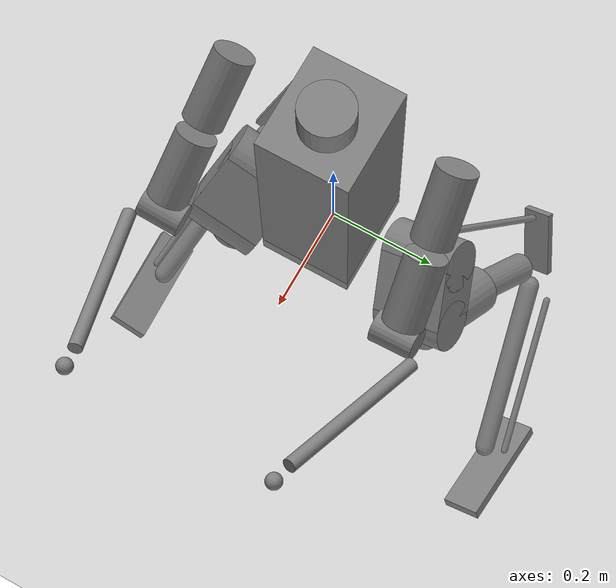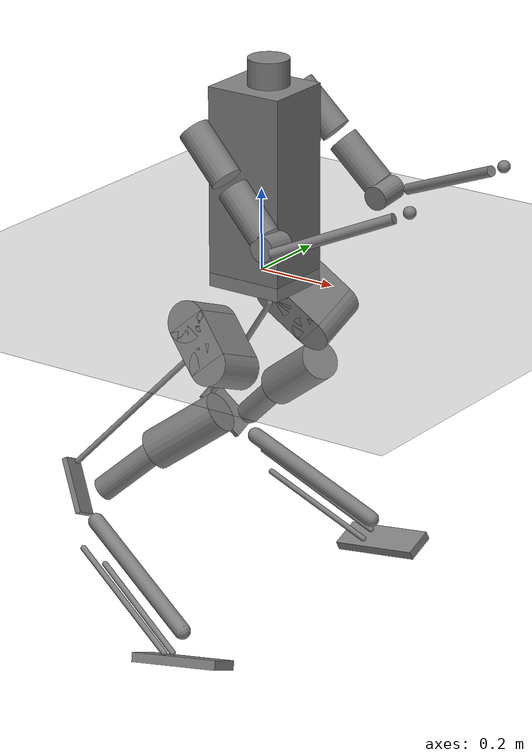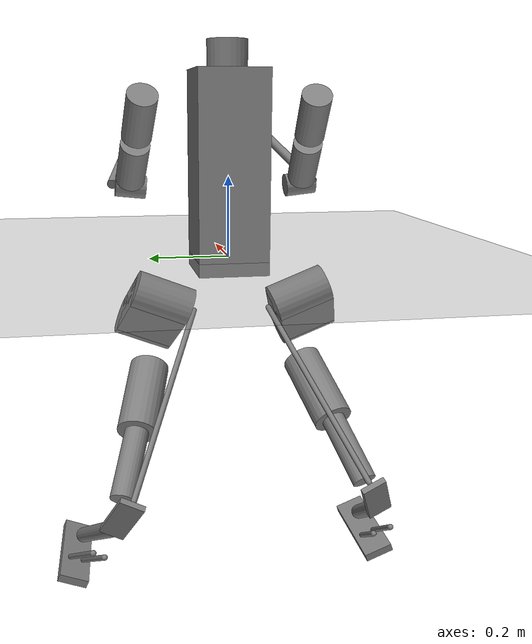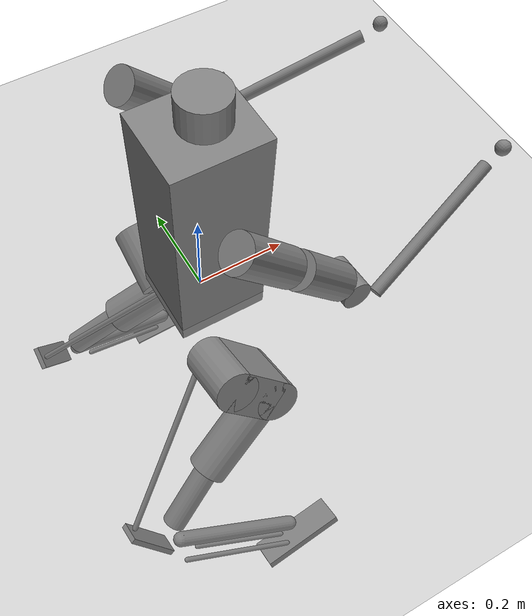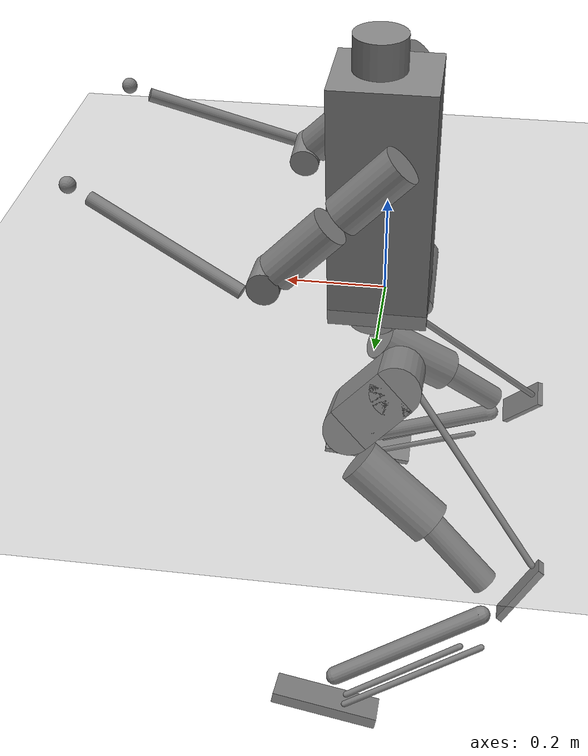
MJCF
<mujoco model='digit-v3'>
  <compiler angle='degree' eulerseq='xyz' meshdir='original_stl'/>
  <option iterations='50' solver='Newton' timestep='0.0005' gravity='0 0 -9.806'/>
  <size nconmax='100' />
  <asset>
    <material name='collision' rgba='0.1 0.5 0.9 0.4'/>
    <material name='plane' reflectance='0.000000' texrepeat='1 1' texture='plane' texuniform='true'/>
    <material name='robot' rgba='0.9 0.5 0.1 1'/>
    <texture builtin='checker' height='512' name='plane' rgb1='0.2 0.2 0.2' rgb2='0.3 0.3 0.3' type='2d' width='512'/>
    <texture builtin='gradient' height='128' rgb1='0.4 0.6 0.8' rgb2='0 0 0' type='skybox' width='128'/>
  </asset>
  <default>
    <default class='collision'>
      <geom conaffinity='1' condim='3' contype='1'/>
    </default>
    <equality solimp='0.9 0.95 0.001 0.1 2' solref='0.001 1.1' />
    <geom conaffinity='0' condim='1' contype='0' solref='0.005 1' />
    <joint solreflimit='0.001 1' />
  </default>
  <worldbody>
    <geom name='ground' type='plane' size='0 0 1' conaffinity='15' condim='3' friction='0.7 0.01 0.005' pos='0 0 0' priority='100' />
    <body name='base' pos='0 0 0' euler='-0 0 -0'>
      <inertial pos='0.001637 0.0002 0.259307' mass='15.028392' fullinertia='0.375905 0.344193 0.098732 -8.8e-05 0.0085 6.6e-05' />
      <joint type='free' limited='false'/>
      <geom type='box' size='0.0975 0.087 0.245' pos='0.008 0 0.21' euler='-0 0 -0' friction='0.7 0.01 0.005'  mass='15.028392' class='collision'/>
      <geom type='cylinder' size='0.05 0.0325' pos='0.02 0 0.49' euler='-0 0 -0' friction='0.7 0.01 0.005'  mass='15.028392' class='collision'/>

      <body name='left-hip-roll' pos='-0.001 0.091 0' euler='21.5 -90 0'>
        <inertial pos='-0.001967 0.000244 0.031435' mass='0.915088' fullinertia='0.001017 0.001148 0.000766 -3e-06 1.3e-05 -4e-06' />
        <joint name='left-hip-roll' type='hinge' axis='0 0 1' range='-60 60' stiffness='0' frictionloss='1' damping='1' armature='0.173824' limited='true' pos='0 0 0'/>

        <body name='left-hip-yaw' pos='-0.0505 0 0.044' euler='0 -90 0'>
          <inertial pos='1e-05 -0.001945 0.042033' mass='0.818753' fullinertia='0.001627 0.001929 0.00077 -1e-06 2e-06 5.3e-05' />
          <joint name='left-hip-yaw' type='hinge' axis='0 0 1' range='-40 40' stiffness='0' frictionloss='1' damping='1' armature='0.0679' limited='true' pos='0 0 0'/>

          <body name='left-hip-pitch' pos='0 0.004 0.068' euler='90 0 135'>
            <inertial pos='0.060537 0.000521 -0.038857' mass='6.244279' fullinertia='0.011533 0.033345 0.033958 -0.000171 0.000148 0.000178' />
            <joint name='left-hip-pitch' type='hinge' axis='0 0 -1' range='-60 90' stiffness='0' frictionloss='0.5' damping='1' armature='0.120473' limited='true' pos='0 0 0'/>

            <geom type='cylinder' size='0.05 0.072' pos='0 0 -0.04' euler='-0 0 -0' friction='0.7 0.01 0.005' contype='4' conaffinity='3' mass='6.244279' class='collision'/>
            <geom type='cylinder' size='0.05 0.072' pos='0.12 0 -0.04' euler='-0 0 -0' friction='0.7 0.01 0.005' contype='4' conaffinity='3' mass='6.244279' class='collision'/>
            <geom type='box' size='0.06 0.05 0.072' pos='0.06 0 -0.04' euler='-0 0 -0' friction='0.7 0.01 0.005' contype='4' conaffinity='3' mass='6.244279' class='collision'/>

            <body name='left-achilles-rod' pos='0 0 0.046' euler='4.09 0.05 -82.27'>
              <inertial pos='0.2506 0 0' mass='0.178148' fullinertia='3e-06 0.004501 0.004501 0 0 0' />
              <joint name='left-achilles-rod' type='ball' axis='0 0 1'  stiffness='0' frictionloss='0' damping='0.01' armature='0' limited='false' pos='0 0 0'/>

              <geom type='capsule' size='0.007 0.25' pos='0.25 0 0' euler='4 90 0' friction='0.7 0.01 0.005' contype='4' conaffinity='3' mass='0.178148' class='collision'/>
            </body>

            <body name='left-knee' pos='0.12 0 0.0045' euler='0 0 -90'>
              <inertial pos='0.045641 0.042154 0.001657' mass='1.227077' fullinertia='0.002643 0.005098 0.007019 -0.001832 6.6e-05 4.5e-05' />
              <joint name='left-knee' type='hinge' axis='0 0 1' range='-80 58.4' stiffness='0' frictionloss='0.5' damping='1' armature='0.120473' limited='true' pos='0 0 0'/>

              <body name='left-shin' pos='0.060677 0.047406 0' euler='-0 0 -0'>
                <inertial pos='0.174265 0.010265 0.00107' mass='0.895793' fullinertia='0.001128 0.022492 0.022793 0.001098 0.000196 -3e-06' />
                <joint name='left-shin' type='hinge' axis='0 0 1'  stiffness='6000' frictionloss='0' damping='0' armature='0' limited='false' pos='0 0 0'/>

                <geom type='cylinder' size='0.03 0.1715' pos='0.23 0 0' euler='0 90 0' friction='0.7 0.01 0.005' contype='4' conaffinity='3' mass='0.895793' class='collision'/>
                <geom type='cylinder' size='0.05 0.1' pos='0.125 0.009 0' euler='90 84 -3.042764221e-14' friction='0.7 0.01 0.005' contype='4' conaffinity='3' mass='0.895793' class='collision'/>

                <body name='left-tarsus' pos='0.434759 0.02 0' euler='-0 0 103'>
                  <inertial pos='0.100777 -0.029183 0.000678' mass='1.322865' fullinertia='0.000932 0.016409 0.016501 0.00061 0.000102 9e-06' />
                  <joint name='left-tarsus' type='hinge' axis='0 0 1' range='-50.3 71.6' stiffness='0' frictionloss='0' damping='0' armature='0' limited='true' pos='0 0 0'/>

                  <geom type='capsule' size='0.02 0.18' pos='0.21 -0.03 0' euler='0 90 0' friction='0.7 0.01 0.005' contype='4' conaffinity='3' mass='1.322865' class='collision'/>
                  <geom type='box' size='0.007 0.07 0.03' pos='-0.07 -0.012 0' euler='5 3.975693352e-16 65' friction='0.7 0.01 0.005' contype='4' conaffinity='3' mass='1.322865' class='collision'/>

                  <body name='left-heel-spring' pos='-0.01766 -0.029456 0.00104' euler='4.47 0.32 155.8'>
                    <inertial pos='0.049086 0.004739 -4.5e-05' mass='0.230018' fullinertia='5.5e-05 0.00074 0.000701 1.5e-05 1e-06 0' />
                    <joint name='left-heel-spring' type='hinge' axis='0 0 1' range='-6 6' stiffness='4375' frictionloss='0' damping='0' armature='0' limited='true' pos='0 0 0'/>

                  </body>

                  <body name='left-toe-A' pos='0.059 -0.034 -0.0276' euler='-180 0 88.96'>
                    <inertial pos='0.005161 1e-06 -0.002248' mass='0.139557' fullinertia='2.9e-05 5.8e-05 7.4e-05 0 -4e-06 0' />
                    <joint name='left-toe-A' type='hinge' axis='0 0 1' range='-46.2755 44.9815' stiffness='0' frictionloss='1' damping='1' armature='0.036089' limited='true' pos='0 0 0'/>

                    <body name='left-toe-A-rod' pos='0.057 0 -0.008' euler='0.34 2.14 -88.45'>
                      <inertial pos='0.171071 0 0' mass='0.090983' fullinertia='1e-06 0.001182 0.001182 0 0 0' />
                      <joint name='left-toe-A-rod' type='ball' axis='0 0 1'  stiffness='0' frictionloss='0' damping='0.01' armature='0' limited='false' pos='0 0 0'/>

                      <geom type='capsule' size='0.007 0.17' pos='0.17 0 0' euler='4 90 0' friction='0.7 0.01 0.005' contype='4' conaffinity='3' mass='0.090983' class='collision'/>
                    </body>

                  </body>

                  <body name='left-toe-B' pos='0.111 -0.034 0.0276' euler='0 0 -88.96'>
                    <inertial pos='0.005161 1e-06 -0.002248' mass='0.139557' fullinertia='2.9e-05 5.8e-05 7.4e-05 0 -4e-06 0' />
                    <joint name='left-toe-B' type='hinge' axis='0 0 1' range='-45.8918 45.5476' stiffness='0' frictionloss='1' damping='1' armature='0.036089' limited='true' pos='0 0 0'/>

                    <body name='left-toe-B-rod' pos='0.057 0 -0.008' euler='-0.22 -3.08 88.34'>
                      <inertial pos='0.142991 0 0' mass='0.079507' fullinertia='1e-06 0.000768 0.000768 0 0 0' />
                      <joint name='left-toe-B-rod' type='ball' axis='0 0 1'  stiffness='0' frictionloss='0' damping='0.01' armature='0' limited='false' pos='0 0 0'/>

                      <geom type='capsule' size='0.007 0.144' pos='0.144 0 0' euler='4 90 0' friction='0.7 0.01 0.005' contype='4' conaffinity='3' mass='0.079507' class='collision'/>
                    </body>

                  </body>

                  <body name='left-toe-pitch' pos='0.408 -0.04 0' euler='-0 0 71.75'>
                    <inertial pos='-0.000141 2e-06 3e-06' mass='0.043881' fullinertia='5e-06 8e-06 4e-06 0 0 0' />
                    <joint name='left-toe-pitch' type='hinge' axis='0 0 1' range='-44 34' stiffness='0' frictionloss='0' damping='0' armature='0' limited='true' pos='0 0 0'/>

                    <body name='left-toe-roll' pos='0 0 0' euler='0 90 0'>
                      <inertial pos='9e-06 -0.028084 -0.023204' mass='0.531283' fullinertia='0.00187 0.001616 0.000843 0 0 0.000566' />
                      <joint name='left-toe-roll' type='hinge' axis='0 0 1' range='-37 33' stiffness='0' frictionloss='0' damping='0' armature='0' limited='true' pos='0 0 0'/>

                      <geom type='box' size='0.04 0.1175 0.0115' pos='0 -0.0437 -0.0255' euler='-60 0 0' friction='0.7 0.01 0.005' contype='4' conaffinity='3' mass='0.531283' class='collision'/>

                      <body name='left-foot' pos='0 -0.05456 -0.0315' euler='-60 0 -90'>
                      </body>

                    </body>
                  </body>
                </body>
              </body>
            </body>
          </body>
        </body>
      </body>

      <body name='left-shoulder-roll' pos='-0.001 0.12 0.4' euler='-10 -90 0'>
        <inertial pos='-0.000819 -0.003158 0.023405' mass='0.535396' fullinertia='0.000704 0.00075 0.000298 1.4e-05 1.2e-05 3.5e-05' />
        <joint name='left-shoulder-roll' type='hinge' axis='0 0 1' range='-75 75' stiffness='0' frictionloss='2' damping='2' armature='0.173824' limited='true' pos='0 0 0'/>

        <body name='left-shoulder-pitch' pos='-0.00317 -0.011055 0.0555' euler='90 -16 -45'>
          <inertial pos='-4.2e-05 -0.061882 -0.073788' mass='1.440357' fullinertia='0.006761 0.002087 0.005778 -6e-06 -3e-06 -0.002046' />
          <joint name='left-shoulder-pitch' type='hinge' axis='0 0 -1' range='-145 145' stiffness='0' frictionloss='2' damping='2' armature='0.173824' limited='true' pos='0 0 0'/>

          <geom type='cylinder' size='0.038 0.07' pos='0 -0.093 -0.1' euler='90 0 -0' friction='0.7 0.01 0.005'  mass='1.440357' class='collision'/>

          <body name='left-shoulder-yaw' pos='0 -0.165 -0.1' euler='90 0 -0'>
            <inertial pos='-3e-05 0.001937 0.11407' mass='1.065387' fullinertia='0.006967 0.007003 0.000673 -1e-06 -1e-06 -1.5e-05' />
            <joint name='left-shoulder-yaw' type='hinge' axis='0 0 1' range='-100 100' stiffness='0' frictionloss='2' damping='1' armature='0.0679' limited='true' pos='0 0 0'/>

            <geom type='cylinder' size='0.038 0.0675' pos='0 0 0.092558' euler='-0 0 -0' friction='0.7 0.01 0.005'  mass='1.065387' class='collision'/>
            <geom type='cylinder' size='0.03 0.04' pos='0 0.0035 0.185' euler='90 1.590277341e-15 22.5' friction='0.7 0.01 0.005'  mass='1.065387' class='collision'/>

            <body name='left-elbow' pos='0 -0.0385 0.185' euler='90 1.590277341e-15 22.5'>
              <inertial pos='0.107996 0.000521 -0.017765' mass='0.550582' fullinertia='0.000476 0.009564 0.009437 -2.9e-05 0.001403 9e-06' />
              <joint name='left-elbow' type='hinge' axis='0 0 1' range='-77.5 77.5' stiffness='0' frictionloss='2' damping='1' armature='0.173824' limited='true' pos='0 0 0'/>

              <geom type='cylinder' size='0.013 0.1565' pos='0.184 0.01 -0.026' euler='170 78 -180' friction='0.7 0.01 0.005'  mass='0.550582' class='collision'/>
              <geom type='sphere' size='0.015' pos='0.37937 0 -0.061912' euler='-0 0 -0' friction='0.7 0.01 0.005'  mass='0.550582' class='collision'/>

              <body name='left-hand' pos='0.369 0 -0.07912' euler='90 0 -10'>
              </body>

            </body>
          </body>
        </body>
      </body>

      <body name='right-hip-roll' pos='-0.001 -0.091 0' euler='-21.5 -90 0'>
        <inertial pos='-0.001967 -0.000244 0.031435' mass='0.915088' fullinertia='0.001017 0.001148 0.000766 3e-06 1.3e-05 4e-06' />
        <joint name='right-hip-roll' type='hinge' axis='0 0 1' range='-60 60' stiffness='0' frictionloss='1' damping='1' armature='0.173824' limited='true' pos='0 0 0'/>

        <body name='right-hip-yaw' pos='-0.0505 0 0.044' euler='0 -90 0'>
          <inertial pos='1e-05 0.001945 0.042033' mass='0.818753' fullinertia='0.001627 0.001929 0.00077 1e-06 2e-06 -5.3e-05' />
          <joint name='right-hip-yaw' type='hinge' axis='0 0 1' range='-40 40' stiffness='0' frictionloss='1' damping='1' armature='0.0679' limited='true' pos='0 0 0'/>

          <body name='right-hip-pitch' pos='0 -0.004 0.068' euler='-90 0 -135'>
            <inertial pos='0.060537 -0.000521 -0.038857' mass='6.244279' fullinertia='0.011533 0.033345 0.033958 0.000171 0.000148 -0.000178' />
            <joint name='right-hip-pitch' type='hinge' axis='0 0 -1' range='-90 60' stiffness='0' frictionloss='0.5' damping='1' armature='0.120473' limited='true' pos='0 0 0'/>

            <geom type='cylinder' size='0.05 0.072' pos='0 0 -0.04' euler='-0 0 -0' friction='0.7 0.01 0.005' contype='2' conaffinity='1' mass='6.244279' class='collision'/>
            <geom type='cylinder' size='0.05 0.072' pos='0.12 0 -0.04' euler='-0 0 -0' friction='0.7 0.01 0.005' contype='2' conaffinity='1' mass='6.244279' class='collision'/>
            <geom type='box' size='0.06 0.05 0.072' pos='0.06 0 -0.04' euler='-0 0 -0' friction='0.7 0.01 0.005' contype='2' conaffinity='1' mass='6.244279' class='collision'/>

            <body name='right-achilles-rod' pos='0 0 0.046' euler='-4.09 0.05 82.27'>
              <inertial pos='0.2506 0 0' mass='0.178148' fullinertia='3e-06 0.004501 0.004501 0 0 0' />
              <joint name='right-achilles-rod' type='ball' axis='0 0 1'  stiffness='0' frictionloss='0' damping='0.01' armature='0' limited='false' pos='0 0 0'/>

              <geom type='capsule' size='0.007 0.25' pos='0.25 0 0' euler='-4 90 0' friction='0.7 0.01 0.005' contype='2' conaffinity='1' mass='0.178148' class='collision'/>
            </body>

            <body name='right-knee' pos='0.12 0 0.0045' euler='-0 0 90'>
              <inertial pos='0.045641 -0.042154 0.001657' mass='1.227077' fullinertia='0.002643 0.005098 0.007019 0.001832 6.6e-05 -4.5e-05' />
              <joint name='right-knee' type='hinge' axis='0 0 1' range='-58.4 80' stiffness='0' frictionloss='0.5' damping='1' armature='0.120473' limited='true' pos='0 0 0'/>

              <body name='right-shin' pos='0.060677 -0.047406 0' euler='-0 0 -0'>
                <inertial pos='0.174265 -0.010265 0.00107' mass='0.895793' fullinertia='0.001128 0.022492 0.022793 -0.001098 0.000196 3e-06' />
                <joint name='right-shin' type='hinge' axis='0 0 1'  stiffness='6000' frictionloss='0' damping='0' armature='0' limited='false' pos='0 0 0'/>

                <geom type='cylinder' size='0.03 0.1715' pos='0.23 0 0' euler='0 90 0' friction='0.7 0.01 0.005' contype='2' conaffinity='1' mass='0.895793' class='collision'/>
                <geom type='cylinder' size='0.05 0.1' pos='0.125 -0.009 0' euler='-90 84 3.042764221e-14' friction='0.7 0.01 0.005' contype='2' conaffinity='1' mass='0.895793' class='collision'/>

                <body name='right-tarsus' pos='0.434759 -0.02 0' euler='0 0 -103'>
                  <inertial pos='0.100777 0.029183 0.000678' mass='1.322865' fullinertia='0.000932 0.016409 0.016501 -0.00061 0.000102 -9e-06' />
                  <joint name='right-tarsus' type='hinge' axis='0 0 1' range='-71.6 50.3' stiffness='0' frictionloss='0' damping='0' armature='0' limited='true' pos='0 0 0'/>

                  <geom type='capsule' size='0.02 0.18' pos='0.21 0.03 0' euler='0 90 0' friction='0.7 0.01 0.005' contype='2' conaffinity='1' mass='1.322865' class='collision'/>
                  <geom type='box' size='0.007 0.07 0.03' pos='-0.07 0.012 0' euler='-5 3.975693352e-16 -65' friction='0.7 0.01 0.005' contype='2' conaffinity='1' mass='1.322865' class='collision'/>

                  <body name='right-heel-spring' pos='-0.01766 0.029456 0.00104' euler='-4.47 0.32 -155.8'>
                    <inertial pos='0.049086 -0.004739 -4.5e-05' mass='0.230018' fullinertia='5.5e-05 0.00074 0.000701 -1.5e-05 1e-06 0' />
                    <joint name='right-heel-spring' type='hinge' axis='0 0 1' range='-6 6' stiffness='4375' frictionloss='0' damping='0' armature='0' limited='true' pos='0 0 0'/>

                  </body>

                  <body name='right-toe-A' pos='0.059 0.034 -0.0276' euler='180 0 -88.96'>
                    <inertial pos='0.005161 -1e-06 -0.002248' mass='0.139557' fullinertia='2.9e-05 5.8e-05 7.4e-05 0 -4e-06 0' />
                    <joint name='right-toe-A' type='hinge' axis='0 0 1' range='-44.9815 46.2755' stiffness='0' frictionloss='1' damping='1' armature='0.036089' limited='true' pos='0 0 0'/>

                    <body name='right-toe-A-rod' pos='0.057 0 -0.008' euler='-0.34 2.14 88.45'>
                      <inertial pos='0.171071 0 0' mass='0.090983' fullinertia='1e-06 0.001182 0.001182 0 0 0' />
                      <joint name='right-toe-A-rod' type='ball' axis='0 0 1'  stiffness='0' frictionloss='0' damping='0.01' armature='0' limited='false' pos='0 0 0'/>

                      <geom type='capsule' size='0.007 0.17' pos='0.17 0 0' euler='-4 90 0' friction='0.7 0.01 0.005' contype='2' conaffinity='1' mass='0.090983' class='collision'/>
                    </body>

                  </body>

                  <body name='right-toe-B' pos='0.111 0.034 0.0276' euler='-0 0 88.96'>
                    <inertial pos='0.005161 -1e-06 -0.002248' mass='0.139557' fullinertia='2.9e-05 5.8e-05 7.4e-05 0 -4e-06 0' />
                    <joint name='right-toe-B' type='hinge' axis='0 0 1' range='-45.5476 45.8918' stiffness='0' frictionloss='1' damping='1' armature='0.036089' limited='true' pos='0 0 0'/>

                    <body name='right-toe-B-rod' pos='0.057 0 -0.008' euler='0.22 -3.08 -88.34'>
                      <inertial pos='0.142991 0 0' mass='0.079507' fullinertia='1e-06 0.000768 0.000768 0 0 0' />
                      <joint name='right-toe-B-rod' type='ball' axis='0 0 1'  stiffness='0' frictionloss='0' damping='0.01' armature='0' limited='false' pos='0 0 0'/>

                      <geom type='capsule' size='0.007 0.144' pos='0.144 0 0' euler='-4 90 0' friction='0.7 0.01 0.005' contype='2' conaffinity='1' mass='0.079507' class='collision'/>
                    </body>

                  </body>

                  <body name='right-toe-pitch' pos='0.408 0.04 0' euler='0 0 -71.75'>
                    <inertial pos='-0.000141 -2e-06 3e-06' mass='0.043881' fullinertia='5e-06 8e-06 4e-06 0 0 0' />
                    <joint name='right-toe-pitch' type='hinge' axis='0 0 1' range='-34 44' stiffness='0' frictionloss='0' damping='0' armature='0' limited='true' pos='0 0 0'/>

                    <body name='right-toe-roll' pos='0 0 0' euler='0 90 0'>
                      <inertial pos='9e-06 0.028084 -0.023204' mass='0.531283' fullinertia='0.00187 0.001616 0.000843 0 0 -0.000566' />
                      <joint name='right-toe-roll' type='hinge' axis='0 0 1' range='-33 37' stiffness='0' frictionloss='0' damping='0' armature='0' limited='true' pos='0 0 0'/>

                      <geom type='box' size='0.04 0.1175 0.0115' pos='0 0.0437 -0.0255' euler='60 0 -0' friction='0.7 0.01 0.005' contype='2' conaffinity='1' mass='0.531283' class='collision'/>

                      <body name='right-foot' pos='0 0.05456 -0.0315' euler='60 0 90'>
                      </body>

                    </body>
                  </body>
                </body>
              </body>
            </body>
          </body>
        </body>
      </body>

      <body name='right-shoulder-roll' pos='-0.001 -0.12 0.4' euler='10 -90 0'>
        <inertial pos='-0.000819 0.003158 0.023405' mass='0.535396' fullinertia='0.000704 0.00075 0.000298 -1.4e-05 1.2e-05 -3.5e-05' />
        <joint name='right-shoulder-roll' type='hinge' axis='0 0 1' range='-75 75' stiffness='0' frictionloss='2' damping='2' armature='0.173824' limited='true' pos='0 0 0'/>

        <body name='right-shoulder-pitch' pos='-0.00317 0.011055 0.0555' euler='-90 -16 45'>
          <inertial pos='-4.2e-05 0.061882 -0.073788' mass='1.440357' fullinertia='0.006761 0.002087 0.005778 6e-06 -3e-06 0.002046' />
          <joint name='right-shoulder-pitch' type='hinge' axis='0 0 -1' range='-145 145' stiffness='0' frictionloss='2' damping='2' armature='0.173824' limited='true' pos='0 0 0'/>

          <geom type='cylinder' size='0.038 0.07' pos='0 0.093 -0.1' euler='-90 0 0' friction='0.7 0.01 0.005'  mass='1.440357' class='collision'/>

          <body name='right-shoulder-yaw' pos='0 0.165 -0.1' euler='-90 0 0'>
            <inertial pos='-3e-05 -0.001937 0.11407' mass='1.065387' fullinertia='0.006967 0.007003 0.000673 1e-06 -1e-06 1.5e-05' />
            <joint name='right-shoulder-yaw' type='hinge' axis='0 0 1' range='-100 100' stiffness='0' frictionloss='2' damping='1' armature='0.0679' limited='true' pos='0 0 0'/>

            <geom type='cylinder' size='0.038 0.0675' pos='0 0 0.092558' euler='-0 0 -0' friction='0.7 0.01 0.005'  mass='1.065387' class='collision'/>
            <geom type='cylinder' size='0.03 0.04' pos='0 -0.0035 0.185' euler='-90 1.590277341e-15 -22.5' friction='0.7 0.01 0.005'  mass='1.065387' class='collision'/>

            <body name='right-elbow' pos='0 0.0385 0.185' euler='-90 1.590277341e-15 -22.5'>
              <inertial pos='0.107996 -0.000521 -0.017765' mass='0.550582' fullinertia='0.000476 0.009564 0.009437 2.9e-05 0.001403 -9e-06' />
              <joint name='right-elbow' type='hinge' axis='0 0 1' range='-77.5 77.5' stiffness='0' frictionloss='2' damping='1' armature='0.173824' limited='true' pos='0 0 0'/>

              <geom type='cylinder' size='0.013 0.1565' pos='0.184 -0.01 -0.026' euler='-170 78 180' friction='0.7 0.01 0.005'  mass='0.550582' class='collision'/>
              <geom type='sphere' size='0.015' pos='0.37937 0 -0.061912' euler='-0 0 -0' friction='0.7 0.01 0.005'  mass='0.550582' class='collision'/>

              <body name='right-hand' pos='0.369 0 -0.07912' euler='-90 0 10'>
              </body>

            </body>
          </body>
        </body>
      </body>
    </body>
  </worldbody>
  <equality>
    <connect name='left-achilles-rod' body1='left-heel-spring' body2='left-achilles-rod' anchor='0.113789 -0.011056 0' />
    <connect name='left-toe-A-rod' body1='left-toe-roll' body2='left-toe-A-rod' anchor='0.0179 -0.009551 -0.054164' />
    <connect name='left-toe-B-rod' body1='left-toe-roll' body2='left-toe-B-rod' anchor='-0.0181 -0.009551 -0.054164' />
    <connect name='right-achilles-rod' body1='right-heel-spring' body2='right-achilles-rod' anchor='0.113789 0.011056 0' />
    <connect name='right-toe-A-rod' body1='right-toe-roll' body2='right-toe-A-rod' anchor='0.0179 0.009551 -0.054164' />
    <connect name='right-toe-B-rod' body1='right-toe-roll' body2='right-toe-B-rod' anchor='-0.0181 0.009551 -0.054164' />
  </equality>
  <actuator>
    <motor name='left-hip-roll' joint='left-hip-roll' gear='80' ctrllimited='true' ctrlrange='-1.583530725 1.583530725'/>
    <motor name='left-hip-yaw' joint='left-hip-yaw' gear='50' ctrllimited='true' ctrlrange='-1.58353072 1.58353072'/>
    <motor name='left-hip-pitch' joint='left-hip-pitch' gear='16' ctrllimited='true' ctrlrange='-13.557993625 13.557993625'/>
    <motor name='left-knee' joint='left-knee' gear='16' ctrllimited='true' ctrlrange='-14.457309375 14.457309375'/>
    <motor name='left-toe-A' joint='left-toe-A' gear='50' ctrllimited='true' ctrlrange='-0.8395188400000001 0.8395188400000001'/>
    <motor name='left-toe-B' joint='left-toe-B' gear='50' ctrllimited='true' ctrlrange='-0.8395188400000001 0.8395188400000001'/>
    <motor name='left-shoulder-roll' joint='left-shoulder-roll' gear='80' ctrllimited='true' ctrlrange='-1.583530725 1.583530725'/>
    <motor name='left-shoulder-pitch' joint='left-shoulder-pitch' gear='80' ctrllimited='true' ctrlrange='-1.583530725 1.583530725'/>
    <motor name='left-shoulder-yaw' joint='left-shoulder-yaw' gear='50' ctrllimited='true' ctrlrange='-1.58353072 1.58353072'/>
    <motor name='left-elbow' joint='left-elbow' gear='80' ctrllimited='true' ctrlrange='-1.583530725 1.583530725'/>
    <motor name='right-hip-roll' joint='right-hip-roll' gear='80' ctrllimited='true' ctrlrange='-1.583530725 1.583530725'/>
    <motor name='right-hip-yaw' joint='right-hip-yaw' gear='50' ctrllimited='true' ctrlrange='-1.58353072 1.58353072'/>
    <motor name='right-hip-pitch' joint='right-hip-pitch' gear='16' ctrllimited='true' ctrlrange='-13.557993625 13.557993625'/>
    <motor name='right-knee' joint='right-knee' gear='16' ctrllimited='true' ctrlrange='-14.457309375 14.457309375'/>
    <motor name='right-toe-A' joint='right-toe-A' gear='50' ctrllimited='true' ctrlrange='-0.8395188400000001 0.8395188400000001'/>
    <motor name='right-toe-B' joint='right-toe-B' gear='50' ctrllimited='true' ctrlrange='-0.8395188400000001 0.8395188400000001'/>
    <motor name='right-shoulder-roll' joint='right-shoulder-roll' gear='80' ctrllimited='true' ctrlrange='-1.583530725 1.583530725'/>
    <motor name='right-shoulder-pitch' joint='right-shoulder-pitch' gear='80' ctrllimited='true' ctrlrange='-1.583530725 1.583530725'/>
    <motor name='right-shoulder-yaw' joint='right-shoulder-yaw' gear='50' ctrllimited='true' ctrlrange='-1.58353072 1.58353072'/>
    <motor name='right-elbow' joint='right-elbow' gear='80' ctrllimited='true' ctrlrange='-1.583530725 1.583530725'/>
  </actuator>
</mujoco>
